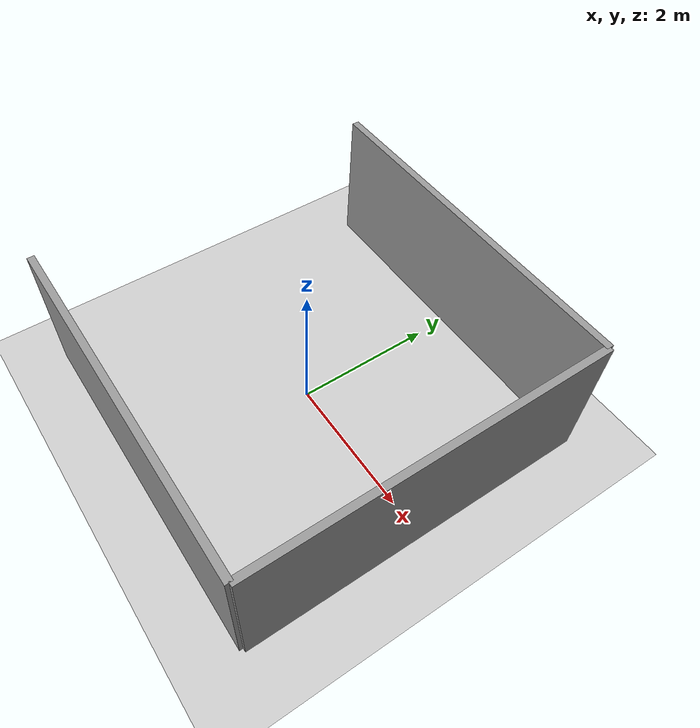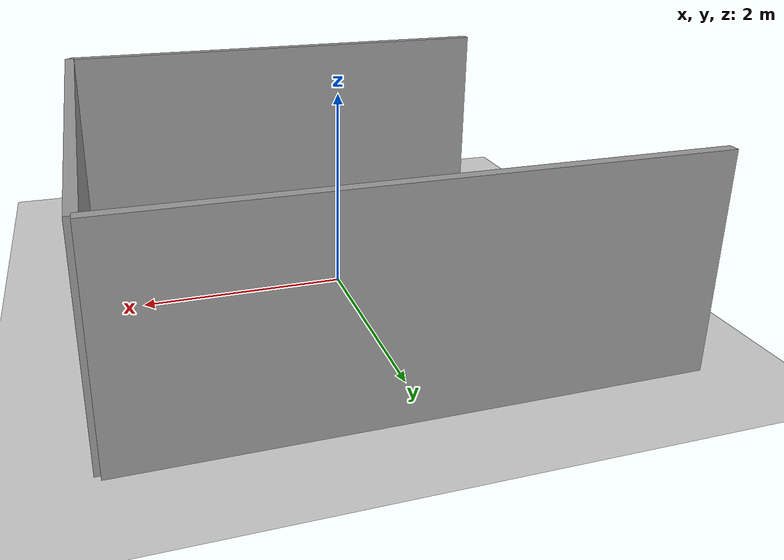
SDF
<?xml version="1.0" ?>
<sdf version="1.8">
    <world name="my_world">

    <include>
        <uri>https://fuel.gazebosim.org/1.0/OpenRobotics/models/Ground Plane</uri>
    </include>

    <!-- Add a sun -->
    <include>
        <uri>https://fuel.gazebosim.org/1.0/OpenRobotics/models/Sun</uri>
    </include>
        <!-- Physics Engine -->
        <physics type="ode">
            <max_step_size>0.001</max_step_size>
            <real_time_factor>1</real_time_factor>
        </physics>

        <!-- Walls -->
        <model name="wall_1">
            <static>true</static>
            <link name="link">
                <visual name="visual">
                    <geometry>
                        <box>
                            <size>5 0.1 2</size>
                        </box>
                    </geometry>
                    <material>
                        <ambient>0.6 0.6 0.6 1</ambient>
                    </material>
                </visual>
                <pose>0 2.5 1 0 0 0</pose>
            </link>
        </model>

        <model name="wall_2">
            <static>true</static>
            <link name="link">
                <visual name="visual">
                    <geometry>
                        <box>
                            <size>5 0.1 2</size>
                        </box>
                    </geometry>
                    <material>
                        <ambient>0.6 0.6 0.6 1</ambient>
                    </material>
                </visual>
                <pose>0 -2.5 1 0 0 0</pose>
            </link>
        </model>

        <model name="wall_3">
            <static>true</static>
            <link name="link">
                <visual name="visual">
                    <geometry>
                        <box>
                            <size>0.1 5 2</size>
                        </box>
                    </geometry>
                    <material>
                        <ambient>0.6 0.6 0.6 1</ambient>
                    </material>
                </visual>
                <pose>2.5 0 1 0 0 0</pose>
            </link>
        </model>

    </world>
</sdf>
